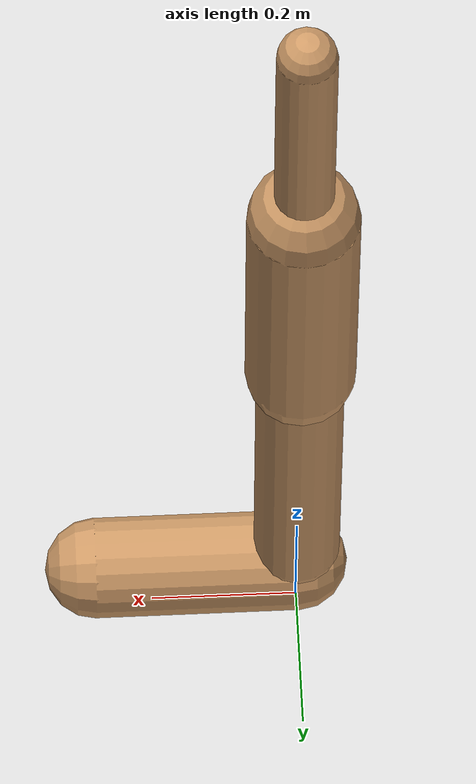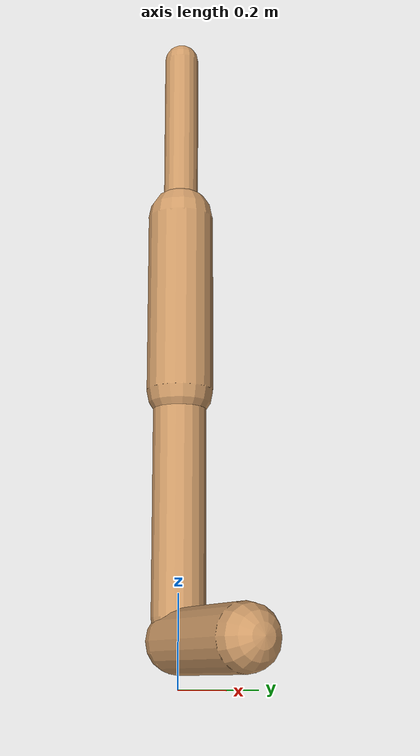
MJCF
<mujoco model="walker2d">
  <compiler angle="degree" coordinate="global" inertiafromgeom="true" />
  <default>
    <joint armature="0.01" damping=".1" limited="true" />
    <geom conaffinity="0" condim="3" contype="1" density="1000" friction="0.8 .1 .1" rgba="0.8 0.6 .4 1" />
  </default>
  <option integrator="RK4" timestep="0.002" />
  <worldbody>

    <body name="torso" pos="0 0 -0.09356266763379358">
      <joint armature="0" axis="1 0 0" damping="0" limited="false" name="ignorex" pos="0 0 0" stiffness="0" type="slide" />
      <joint armature="0" axis="0 0 1" damping="0" limited="false" name="ignorez" pos="0 0 0" ref="1.25" stiffness="0" type="slide" />
      <joint armature="0" axis="0 1 0" damping="0" limited="false" name="ignorey" pos="0 0 0" stiffness="0" type="hinge" />
      <geom fromto="0 0 1.45 0 0 1.05" name="torso_geom" size="0.03919003024775519" type="capsule" />
      <body name="thigh">
        <joint axis="0 -1 0" name="thigh_joint" pos="0 0 1.05" range="-150 0" type="hinge" />
        <geom fromto="0.0 0.0 1.05 0.0 0.0 0.6443191583528496" name="thigh_geom" size="0.0742830402001631" type="capsule" />
        <body name="leg" pos="0.0 0.0 0.04431915835284961">
          <joint axis="0 -1 0" name="leg_joint" pos="0 0 0.6" range="-150 0" type="hinge" />
          <geom fromto="0.0 0.0 0.6 0.0 0.0 0.149243509280944" name="leg_geom" size="0.05942643216013048" type="capsule" />
          <body name="foot" pos="0.0 0.0 0.04924350928094398">
            <joint axis="0 -1 0" name="foot_joint" pos="0 0 0.1" range="-45 45" type="hinge" />
            <geom fromto="-0.0 0.0 0.1 0.27808940440357033 0.0 0.1" name="foot_geom" size="0.07001211789065269" type="capsule" />
          </body>
        </body>
      </body>

      <body name="thigh_left">
        <joint axis="0 -1 0" name="thigh_left_joint" pos="0 0 1.05" range="-150 0" type="hinge" />
        <geom fromto="0.0 0.0 1.05 0.0 0.0 0.6443191583528496" name="thigh_left_geom" rgba=".7 .3 .6 1" size="0.0742830402001631" type="capsule" />
        <body name="leg_left" pos="0.0 0.0 0.04431915835284961">
          <joint axis="0 -1 0" name="leg_left_joint" pos="0 0 0.6" range="-150 0" type="hinge" />
          <geom fromto="0.0 0.0 0.6 0.0 0.0 0.149243509280944" name="leg_left_geom" rgba=".7 .3 .6 1" size="0.05942643216013048" type="capsule" />
          <body name="foot_left" pos="0.0 0.0 0.04924350928094398">
            <joint axis="0 -1 0" name="foot_left_joint" pos="0 0 0.1" range="-45 45" type="hinge" />
            <geom fromto="-0.0 0.0 0.1 0.27808940440357033 0.0 0.1" name="foot_left_geom" rgba=".7 .3 .6 1" size="0.07001211789065269" type="capsule" />
          </body>
        </body>
      </body>
    </body>
  </worldbody>
  <actuator>

    <motor ctrllimited="true" ctrlrange="-1.0 1.0" gear="100" joint="thigh_joint" />
    <motor ctrllimited="true" ctrlrange="-1.0 1.0" gear="100" joint="leg_joint" />
    <motor ctrllimited="true" ctrlrange="-1.0 1.0" gear="100" joint="foot_joint" />
    <motor ctrllimited="true" ctrlrange="-1.0 1.0" gear="100" joint="thigh_left_joint" />
    <motor ctrllimited="true" ctrlrange="-1.0 1.0" gear="100" joint="leg_left_joint" />
    <motor ctrllimited="true" ctrlrange="-1.0 1.0" gear="100" joint="foot_left_joint" />

  </actuator>
</mujoco>
